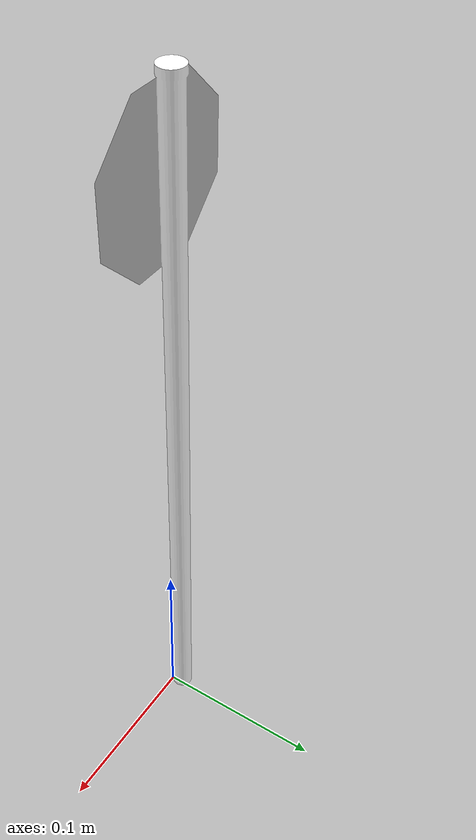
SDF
<?xml version='1.0'?>
<sdf version='1.7'>
  <model name='stop'>
	<static>true</static>
    <link name='link_0'>

		<collision name="collision">
		<geometry>
			<mesh>
				<uri>model://stop/mesh/model.dae</uri>
	            <scale>0.16 0.16 0.16</scale>
			</mesh>
		</geometry>
		</collision>

		<visual name="visual">
		<cast_shadows>true</cast_shadows>
		<geometry>
			<mesh>
				<uri>model://stop/mesh/model.dae</uri>
	            <scale>0.16 0.16 0.16</scale>
			</mesh>
		</geometry>
		</visual>
    </link>
  </model>
</sdf>
